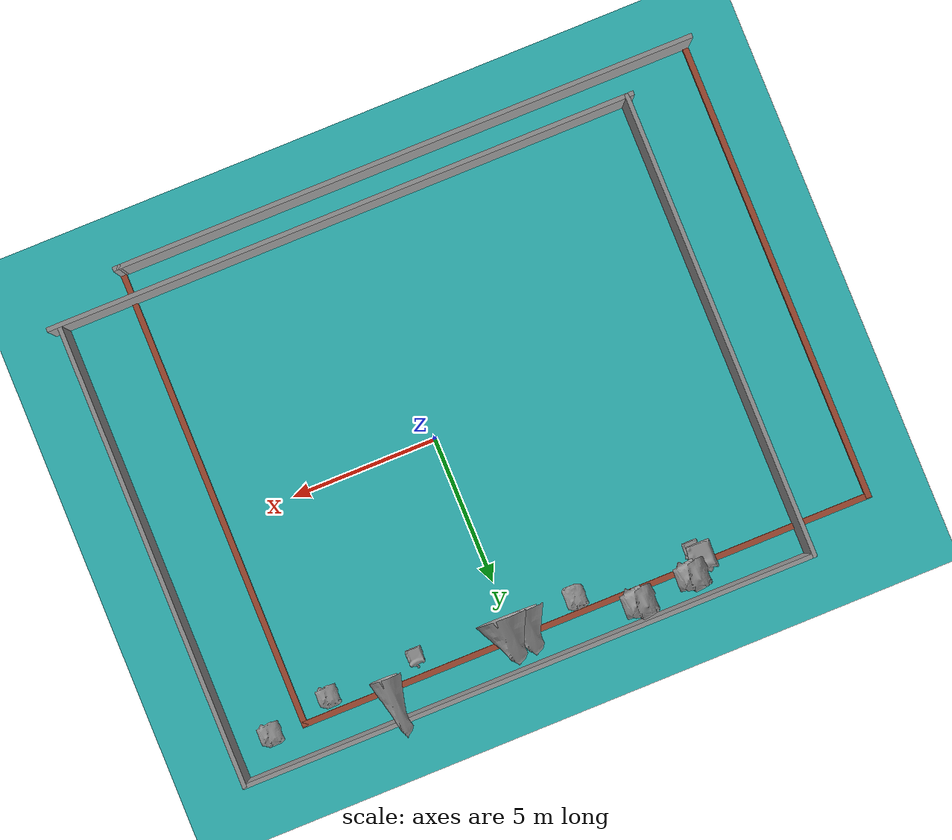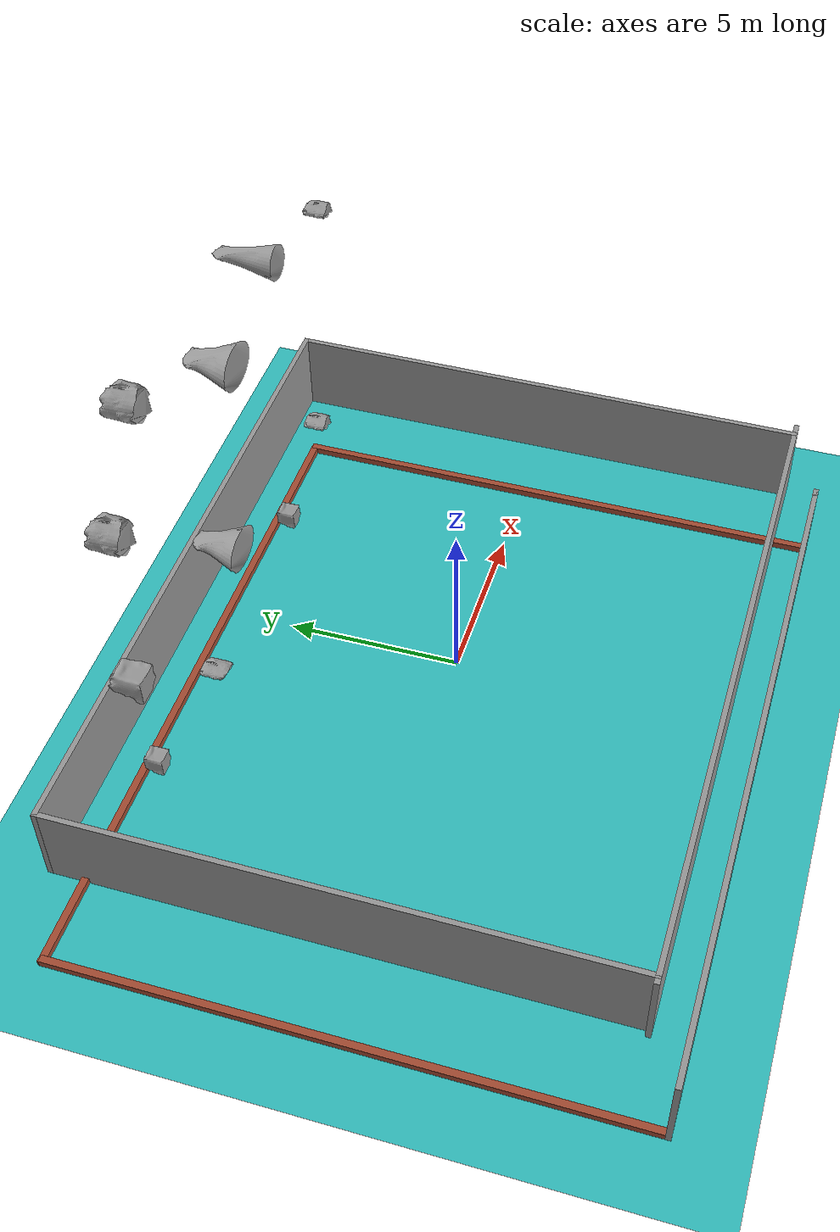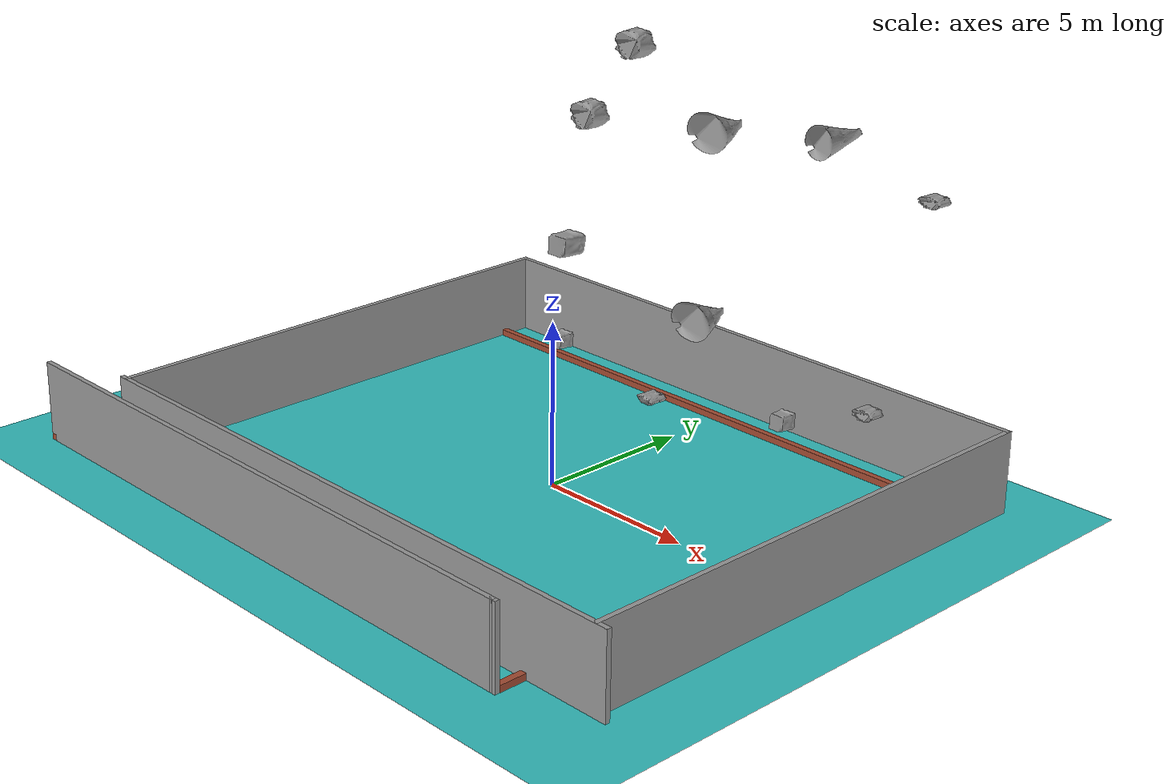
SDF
<sdf version="1.6">
 <world name="rectangle">
  <scene><ambient>0.4 0.4 0.4 1</ambient><background>0.7 0.7 0.7 1</background><shadows>1</shadows></scene>
  <light name="sun" type="directional">
   <pose>0 0 10 0 -0 0</pose>
   <diffuse>0.8 0.8 0.8 1</diffuse>
   <specular>0.1 0.1 0.1 1</specular>
   <attenuation>
    <range>1000</range>
    <constant>0.9</constant>
    <linear>0.01</linear>
    <quadratic>0.001</quadratic>
   </attenuation>
   <direction>-0.5 0.5 -1</direction>
  </light>
  <model name="ground_plane">
   <static>1</static>
   <link name="link">
    <collision name="collision">
     <geometry><plane><normal>0 0 1</normal><size>19.8 16</size></plane></geometry>
     <surface><friction><ode><mu>100</mu><mu2>50</mu2></ode></friction></surface>
    </collision>
    <visual name="visual">
     <cast_shadows>0</cast_shadows>
     <geometry><plane><normal>0 0 1</normal><size>19.8 16</size></plane></geometry>
     <material>
      <script><uri>$(find multi_world)/materials/scripts/gazebo.material</uri><name>Gazebo/Turquoise</name></script>
     </material>
    </visual>
   </link>
  </model>
  <physics name="default_physics" default="0" type="ode">
   <real_time_update_rate>1000</real_time_update_rate>
   <max_step_size>0.001</max_step_size>
   <real_time_factor>1</real_time_factor>
   <ode>
    <solver>
     <type>quick</type>
     <iters>150</iters>
     <precon_iters>0</precon_iters>
     <sor>1.4</sor>
     <use_dynamic_moi_rescaling>1</use_dynamic_moi_rescaling>
    </solver>
    <constraints>
     <cfm>1e-05</cfm>
     <erp>0.2</erp>
     <contact_max_correcting_vel>2000</contact_max_correcting_vel>
     <contact_surface_layer>0.01</contact_surface_layer>
    </constraints>
   </ode>
  </physics>
  <gravity>0 0 -9.8</gravity>
  <magnetic_field>6e-06 2.3e-05 -4.2e-05</magnetic_field>
  <atmosphere type="adiabatic"/>
  <spherical_coordinates>
   <surface_model>EARTH_WGS84</surface_model>
   <latitude_deg>0</latitude_deg>
   <longitude_deg>0</longitude_deg>
   <elevation>0</elevation>
   <heading_deg>0</heading_deg>
  </spherical_coordinates>
  <model name="rectangle">
   <pose>-2.491 -0.932 0 0 -0 0</pose>
   <link name="Wall_0">
    <collision name="Wall_0_Collision">
     <geometry><box><size>20 0.15 2.5</size></box></geometry>
     <pose>0 0 1.25 0 -0 0</pose>
    </collision>
    <visual name="Wall_0_Visual">
     <pose>0 0 1.25 0 -0 0</pose>
     <geometry><box><size>20 0.15 2.5</size></box></geometry>
     <material>
      <script><uri>file://media/materials/scripts/gazebo.material</uri><name>Gazebo/Grey</name></script>
      <ambient>1 1 1 1</ambient>
     </material>
     <meta><layer>0</layer></meta>
    </visual>
    <pose>0 -7.925 0 0 -0 3.14159</pose>
   </link>
   <link name="Wall_1">
    <collision name="Wall_1_Collision">
     <geometry><box><size>16 0.2 0.2</size></box></geometry>
     <pose>0 0 0.1 0 -0 0</pose>
    </collision>
    <visual name="Wall_1_Visual">
     <pose>0 0 0.1 0 -0 0</pose>
     <geometry><box><size>16 0.2 0.2</size></box></geometry>
     <material>
      <script><uri>file://media/materials/scripts/gazebo.material</uri><name>Gazebo/Bricks</name></script>
      <ambient>0.760784 0.662745 0.627451 1</ambient>
     </material>
     <meta><layer>0</layer></meta>
    </visual>
    <pose>-9.9 0 0 0 -0 1.5708</pose>
   </link>
   <link name="Wall_2">
    <collision name="Wall_2_Collision">
     <geometry><box><size>20 0.2 0.2</size></box></geometry>
     <pose>0 0 0.1 0 -0 0</pose>
    </collision>
    <visual name="Wall_2_Visual">
     <pose>0 0 0.1 0 -0 0</pose>
     <geometry><box><size>20 0.2 0.2</size></box></geometry>
     <material>
      <script><uri>file://media/materials/scripts/gazebo.material</uri><name>Gazebo/Bricks</name></script>
      <ambient>0.760784 0.662745 0.627451 1</ambient>
     </material>
     <meta><layer>0</layer></meta>
    </visual>
    <pose>0 7.925 0 0 -0 0</pose>
   </link>
   <link name="Wall_3">
    <collision name="Wall_3_Collision">
     <geometry><box><size>16 0.2 0.2</size></box></geometry>
     <pose>0 0 0.1 0 -0 0</pose>
    </collision>
    <visual name="Wall_3_Visual">
     <pose>0 0 0.1 0 -0 0</pose>
     <geometry><box><size>16 0.2 0.2</size></box></geometry>
     <material>
      <script><uri>file://media/materials/scripts/gazebo.material</uri><name>Gazebo/Bricks</name></script>
      <ambient>0.760784 0.662745 0.627451 1</ambient>
     </material>
     <meta><layer>0</layer></meta>
    </visual>
    <pose>9.9 0 0 0 0 -1.5708</pose>
   </link>
   <link name="Wall_4">
    <collision name="Wall_4_Collision">
     <geometry><box><size>0.16 0.15 2.5</size></box></geometry>
     <pose>0 0 1.25 0 -0 0</pose>
    </collision>
    <visual name="Wall_4_Visual">
     <pose>0 0 1.25 0 -0 0</pose>
     <geometry><box><size>0.16 0.15 2.5</size></box></geometry>
     <material>
      <script><uri>file://media/materials/scripts/gazebo.material</uri><name>Gazebo/Grey</name></script>
      <ambient>1 1 1 1</ambient>
     </material>
     <meta><layer>0</layer></meta>
    </visual>
    <pose>9.80486 -7.92504 0 0 0 -0.008574</pose>
   </link>
   <static>1</static>
  </model>
  <model name="rectangle_v4">
   <link name="link_0">
    <pose>-2.4371 4.8725 -0.041325 0 -0 0</pose>
    <inertial>
     <mass>1</mass>
     <inertia>
      <ixx>0.166667</ixx>
      <ixy>0</ixy>
      <ixz>0</ixz>
      <iyy>0.166667</iyy>
      <iyz>0</iyz>
      <izz>0.166667</izz>
     </inertia>
    </inertial>
    <visual name="visual">
     <geometry>
      <mesh>
       <uri>/home/ubuntu16/catkin_ws/src/project_autoracs/multi_world/materials/meshes/rock_1m.dae</uri>
       <scale>1 1 1</scale>
      </mesh>
     </geometry>
     <material>
      <lighting>1</lighting>
      <script><uri>file://media/materials/scripts/gazebo.material</uri><name>Gazebo/Grey</name></script>
      <shader type="pixel"><normal_map>__default__</normal_map></shader>
      <ambient>0.3 0.3 0.3 1</ambient>
      <diffuse>0.7 0.7 0.7 1</diffuse>
      <specular>0.01 0.01 0.01 1</specular>
      <emissive>0 0 0 1</emissive>
     </material>
    </visual>
    <collision name="collision">
     <geometry>
      <mesh>
       <uri>/home/ubuntu16/catkin_ws/src/project_autoracs/multi_world/materials/meshes/rock_1m.dae</uri>
       <scale>1 1 1</scale>
      </mesh>
     </geometry>
     <surface>
      <friction>
       <ode><mu>1</mu><mu2>1</mu2><fdir1>0 0 0</fdir1><slip1>0</slip1><slip2>0</slip2></ode>
       <torsional>
        <coefficient>1</coefficient>
        <patch_radius>0</patch_radius>
        <surface_radius>0</surface_radius>
        <use_patch_radius>1</use_patch_radius>
        <ode><slip>0</slip></ode>
       </torsional>
      </friction>
      <bounce><restitution_coefficient>0</restitution_coefficient><threshold>1e+06</threshold></bounce>
      <contact>
       <collide_without_contact>0</collide_without_contact>
       <collide_without_contact_bitmask>1</collide_without_contact_bitmask>
       <collide_bitmask>1</collide_bitmask>
       <ode>
        <soft_cfm>0</soft_cfm>
        <soft_erp>0.2</soft_erp>
        <kp>1e+13</kp>
        <kd>1</kd>
        <max_vel>0.01</max_vel>
        <min_depth>0</min_depth>
       </ode>
       <bullet>
        <split_impulse>1</split_impulse>
        <split_impulse_penetration_threshold>-0.01</split_impulse_penetration_threshold>
        <soft_cfm>0</soft_cfm>
        <soft_erp>0.2</soft_erp>
        <kp>1e+13</kp>
        <kd>1</kd>
       </bullet>
      </contact>
     </surface>
    </collision>
   </link>
   <link name="link_1">
    <pose>-5.9239 -3.55224 0.013716 0 -0 0</pose>
    <inertial>
     <mass>1</mass>
     <inertia>
      <ixx>0.166667</ixx>
      <ixy>0</ixy>
      <ixz>0</ixz>
      <iyy>0.166667</iyy>
      <iyz>0</iyz>
      <izz>0.166667</izz>
     </inertia>
    </inertial>
    <visual name="visual">
     <geometry>
      <mesh>
       <uri>/home/ubuntu16/catkin_ws/src/project_autoracs/multi_world/materials/meshes/rock_2.dae</uri>
       <scale>1 1 1</scale>
      </mesh>
     </geometry>
     <material>
      <lighting>1</lighting>
      <script><uri>file://media/materials/scripts/gazebo.material</uri><name>Gazebo/Grey</name></script>
      <shader type="pixel"/>
      <ambient>0.3 0.3 0.3 1</ambient>
      <diffuse>0.7 0.7 0.7 1</diffuse>
      <specular>0.01 0.01 0.01 1</specular>
      <emissive>0 0 0 1</emissive>
     </material>
    </visual>
    <collision name="collision">
     <geometry>
      <mesh>
       <uri>/home/ubuntu16/catkin_ws/src/project_autoracs/multi_world/materials/meshes/rock_2.dae</uri>
       <scale>1 1 1</scale>
      </mesh>
     </geometry>
     <surface>
      <friction>
       <ode><mu>1</mu><mu2>1</mu2><fdir1>0 0 0</fdir1><slip1>0</slip1><slip2>0</slip2></ode>
       <torsional>
        <coefficient>1</coefficient>
        <patch_radius>0</patch_radius>
        <surface_radius>0</surface_radius>
        <use_patch_radius>1</use_patch_radius>
        <ode><slip>0</slip></ode>
       </torsional>
      </friction>
      <bounce><restitution_coefficient>0</restitution_coefficient><threshold>1e+06</threshold></bounce>
      <contact>
       <collide_without_contact>0</collide_without_contact>
       <collide_without_contact_bitmask>1</collide_without_contact_bitmask>
       <collide_bitmask>1</collide_bitmask>
       <ode>
        <soft_cfm>0</soft_cfm>
        <soft_erp>0.2</soft_erp>
        <kp>1e+13</kp>
        <kd>1</kd>
        <max_vel>0.01</max_vel>
        <min_depth>0</min_depth>
       </ode>
       <bullet>
        <split_impulse>1</split_impulse>
        <split_impulse_penetration_threshold>-0.01</split_impulse_penetration_threshold>
        <soft_cfm>0</soft_cfm>
        <soft_erp>0.2</soft_erp>
        <kp>1e+13</kp>
        <kd>1</kd>
       </bullet>
      </contact>
     </surface>
    </collision>
   </link>
   <link name="link_1_clone">
    <pose>-4.10383 -6.14831 0.013716 0 -0 0</pose>
    <inertial>
     <mass>1</mass>
     <inertia>
      <ixx>0.166667</ixx>
      <ixy>0</ixy>
      <ixz>0</ixz>
      <iyy>0.166667</iyy>
      <iyz>0</iyz>
      <izz>0.166667</izz>
     </inertia>
    </inertial>
    <visual name="visual">
     <geometry>
      <mesh>
       <uri>/home/ubuntu16/catkin_ws/src/project_autoracs/multi_world/materials/meshes/rock_2.dae</uri>
       <scale>1 1 1</scale>
      </mesh>
     </geometry>
     <material>
      <lighting>1</lighting>
      <script><uri>file://media/materials/scripts/gazebo.material</uri><name>Gazebo/Grey</name></script>
      <shader type="pixel"/>
      <ambient>0.3 0.3 0.3 1</ambient>
      <diffuse>0.7 0.7 0.7 1</diffuse>
      <specular>0.01 0.01 0.01 1</specular>
      <emissive>0 0 0 1</emissive>
     </material>
    </visual>
    <collision name="collision">
     <geometry>
      <mesh>
       <uri>/home/ubuntu16/catkin_ws/src/project_autoracs/multi_world/materials/meshes/rock_2.dae</uri>
       <scale>1 1 1</scale>
      </mesh>
     </geometry>
     <surface>
      <friction>
       <ode><mu>1</mu><mu2>1</mu2><fdir1>0 0 0</fdir1><slip1>0</slip1><slip2>0</slip2></ode>
       <torsional>
        <coefficient>1</coefficient>
        <patch_radius>0</patch_radius>
        <surface_radius>0</surface_radius>
        <use_patch_radius>1</use_patch_radius>
        <ode><slip>0</slip></ode>
       </torsional>
      </friction>
      <bounce><restitution_coefficient>0</restitution_coefficient><threshold>1e+06</threshold></bounce>
      <contact>
       <collide_without_contact>0</collide_without_contact>
       <collide_without_contact_bitmask>1</collide_without_contact_bitmask>
       <collide_bitmask>1</collide_bitmask>
       <ode>
        <soft_cfm>0</soft_cfm>
        <soft_erp>0.2</soft_erp>
        <kp>1e+13</kp>
        <kd>1</kd>
        <max_vel>0.01</max_vel>
        <min_depth>0</min_depth>
       </ode>
       <bullet>
        <split_impulse>1</split_impulse>
        <split_impulse_penetration_threshold>-0.01</split_impulse_penetration_threshold>
        <soft_cfm>0</soft_cfm>
        <soft_erp>0.2</soft_erp>
        <kp>1e+13</kp>
        <kd>1</kd>
       </bullet>
      </contact>
     </surface>
    </collision>
   </link>
   <link name="link_2">
    <pose>6.05549 2.45471 -0.114713 0 -0 0</pose>
    <inertial>
     <mass>1</mass>
     <inertia>
      <ixx>0.166667</ixx>
      <ixy>0</ixy>
      <ixz>0</ixz>
      <iyy>0.166667</iyy>
      <iyz>0</iyz>
      <izz>0.166667</izz>
     </inertia>
    </inertial>
    <visual name="visual">
     <geometry>
      <mesh>
       <uri>/home/ubuntu16/catkin_ws/src/project_autoracs/multi_world/materials/meshes/rock_07.dae</uri>
       <scale>1 1 1</scale>
      </mesh>
     </geometry>
     <material>
      <lighting>1</lighting>
      <script><uri>file://media/materials/scripts/gazebo.material</uri><name>Gazebo/Grey</name></script>
      <shader type="pixel"><normal_map>__default__</normal_map></shader>
      <ambient>0.3 0.3 0.3 1</ambient>
      <diffuse>0.7 0.7 0.7 1</diffuse>
      <specular>0.01 0.01 0.01 1</specular>
      <emissive>0 0 0 1</emissive>
     </material>
    </visual>
    <collision name="collision">
     <geometry>
      <mesh>
       <uri>/home/ubuntu16/catkin_ws/src/project_autoracs/multi_world/materials/meshes/rock_07.dae</uri>
       <scale>1 1 1</scale>
      </mesh>
     </geometry>
     <surface>
      <friction>
       <ode><mu>1</mu><mu2>1</mu2><fdir1>0 0 0</fdir1><slip1>0</slip1><slip2>0</slip2></ode>
       <torsional>
        <coefficient>1</coefficient>
        <patch_radius>0</patch_radius>
        <surface_radius>0</surface_radius>
        <use_patch_radius>1</use_patch_radius>
        <ode><slip>0</slip></ode>
       </torsional>
      </friction>
      <bounce><restitution_coefficient>0</restitution_coefficient><threshold>1e+06</threshold></bounce>
      <contact>
       <collide_without_contact>0</collide_without_contact>
       <collide_without_contact_bitmask>1</collide_without_contact_bitmask>
       <collide_bitmask>1</collide_bitmask>
       <ode>
        <soft_cfm>0</soft_cfm>
        <soft_erp>0.2</soft_erp>
        <kp>1e+13</kp>
        <kd>1</kd>
        <max_vel>0.01</max_vel>
        <min_depth>0</min_depth>
       </ode>
       <bullet>
        <split_impulse>1</split_impulse>
        <split_impulse_penetration_threshold>-0.01</split_impulse_penetration_threshold>
        <soft_cfm>0</soft_cfm>
        <soft_erp>0.2</soft_erp>
        <kp>1e+13</kp>
        <kd>1</kd>
       </bullet>
      </contact>
     </surface>
    </collision>
   </link>
   <link name="link_2_clone">
    <pose>7.54558 -4.19262 -0.114713 0 -0 0</pose>
    <inertial>
     <mass>1</mass>
     <inertia>
      <ixx>0.166667</ixx>
      <ixy>0</ixy>
      <ixz>0</ixz>
      <iyy>0.166667</iyy>
      <iyz>0</iyz>
      <izz>0.166667</izz>
     </inertia>
    </inertial>
    <visual name="visual">
     <geometry>
      <mesh>
       <uri>/home/ubuntu16/catkin_ws/src/project_autoracs/multi_world/materials/meshes/rock_07.dae</uri>
       <scale>1 1 1</scale>
      </mesh>
     </geometry>
     <material>
      <lighting>1</lighting>
      <script><uri>file://media/materials/scripts/gazebo.material</uri><name>Gazebo/Grey</name></script>
      <shader type="pixel"><normal_map>__default__</normal_map></shader>
      <ambient>0.3 0.3 0.3 1</ambient>
      <diffuse>0.7 0.7 0.7 1</diffuse>
      <specular>0.01 0.01 0.01 1</specular>
      <emissive>0 0 0 1</emissive>
     </material>
    </visual>
    <collision name="collision">
     <geometry>
      <mesh>
       <uri>/home/ubuntu16/catkin_ws/src/project_autoracs/multi_world/materials/meshes/rock_07.dae</uri>
       <scale>1 1 1</scale>
      </mesh>
     </geometry>
     <surface>
      <friction>
       <ode><mu>1</mu><mu2>1</mu2><fdir1>0 0 0</fdir1><slip1>0</slip1><slip2>0</slip2></ode>
       <torsional>
        <coefficient>1</coefficient>
        <patch_radius>0</patch_radius>
        <surface_radius>0</surface_radius>
        <use_patch_radius>1</use_patch_radius>
        <ode><slip>0</slip></ode>
       </torsional>
      </friction>
      <bounce><restitution_coefficient>0</restitution_coefficient><threshold>1e+06</threshold></bounce>
      <contact>
       <collide_without_contact>0</collide_without_contact>
       <collide_without_contact_bitmask>1</collide_without_contact_bitmask>
       <collide_bitmask>1</collide_bitmask>
       <ode>
        <soft_cfm>0</soft_cfm>
        <soft_erp>0.2</soft_erp>
        <kp>1e+13</kp>
        <kd>1</kd>
        <max_vel>0.01</max_vel>
        <min_depth>0</min_depth>
       </ode>
       <bullet>
        <split_impulse>1</split_impulse>
        <split_impulse_penetration_threshold>-0.01</split_impulse_penetration_threshold>
        <soft_cfm>0</soft_cfm>
        <soft_erp>0.2</soft_erp>
        <kp>1e+13</kp>
        <kd>1</kd>
       </bullet>
      </contact>
     </surface>
    </collision>
   </link>
   <link name="link_3">
    <pose>3.70648 -4.93672 0.545789 0 -0 0</pose>
    <inertial>
     <mass>1</mass>
     <inertia>
      <ixx>0.166667</ixx>
      <ixy>0</ixy>
      <ixz>0</ixz>
      <iyy>0.166667</iyy>
      <iyz>0</iyz>
      <izz>0.166667</izz>
     </inertia>
    </inertial>
    <visual name="visual">
     <geometry>
      <mesh>
       <uri>/home/ubuntu16/catkin_ws/src/project_autoracs/multi_world/materials/meshes/rock_cone.dae</uri>
       <scale>1 1 1</scale>
      </mesh>
     </geometry>
     <material>
      <lighting>1</lighting>
      <script><uri>file://media/materials/scripts/gazebo.material</uri><name>Gazebo/Grey</name></script>
      <shader type="pixel"/>
      <ambient>0.3 0.3 0.3 1</ambient>
      <diffuse>0.7 0.7 0.7 1</diffuse>
      <specular>0.01 0.01 0.01 1</specular>
      <emissive>0 0 0 1</emissive>
     </material>
    </visual>
    <collision name="collision">
     <geometry>
      <mesh>
       <uri>/home/ubuntu16/catkin_ws/src/project_autoracs/multi_world/materials/meshes/rock_cone.dae</uri>
       <scale>1 1 1</scale>
      </mesh>
     </geometry>
     <surface>
      <friction>
       <ode><mu>1</mu><mu2>1</mu2><fdir1>0 0 0</fdir1><slip1>0</slip1><slip2>0</slip2></ode>
       <torsional>
        <coefficient>1</coefficient>
        <patch_radius>0</patch_radius>
        <surface_radius>0</surface_radius>
        <use_patch_radius>1</use_patch_radius>
        <ode><slip>0</slip></ode>
       </torsional>
      </friction>
      <bounce><restitution_coefficient>0</restitution_coefficient><threshold>1e+06</threshold></bounce>
      <contact>
       <collide_without_contact>0</collide_without_contact>
       <collide_without_contact_bitmask>1</collide_without_contact_bitmask>
       <collide_bitmask>1</collide_bitmask>
       <ode>
        <soft_cfm>0</soft_cfm>
        <soft_erp>0.2</soft_erp>
        <kp>1e+13</kp>
        <kd>1</kd>
        <max_vel>0.01</max_vel>
        <min_depth>0</min_depth>
       </ode>
       <bullet>
        <split_impulse>1</split_impulse>
        <split_impulse_penetration_threshold>-0.01</split_impulse_penetration_threshold>
        <soft_cfm>0</soft_cfm>
        <soft_erp>0.2</soft_erp>
        <kp>1e+13</kp>
        <kd>1</kd>
       </bullet>
      </contact>
     </surface>
    </collision>
   </link>
   <link name="link_4">
    <pose>-0.13266 -4.38992 -0.052829 0 -0 0</pose>
    <inertial>
     <mass>1</mass>
     <inertia>
      <ixx>0.166667</ixx>
      <ixy>0</ixy>
      <ixz>0</ixz>
      <iyy>0.166667</iyy>
      <iyz>0</iyz>
      <izz>0.166667</izz>
     </inertia>
    </inertial>
    <visual name="visual">
     <geometry>
      <mesh>
       <uri>/home/ubuntu16/catkin_ws/src/project_autoracs/multi_world/materials/meshes/rock_cone2.dae</uri>
       <scale>1 1 1</scale>
      </mesh>
     </geometry>
     <material>
      <lighting>1</lighting>
      <script><uri>file://media/materials/scripts/gazebo.material</uri><name>Gazebo/Grey</name></script>
      <shader type="pixel"/>
      <ambient>0.3 0.3 0.3 1</ambient>
      <diffuse>0.7 0.7 0.7 1</diffuse>
      <specular>0.01 0.01 0.01 1</specular>
      <emissive>0 0 0 1</emissive>
     </material>
    </visual>
    <collision name="collision">
     <geometry>
      <mesh>
       <uri>/home/ubuntu16/catkin_ws/src/project_autoracs/multi_world/materials/meshes/rock_cone2.dae</uri>
       <scale>1 1 1</scale>
      </mesh>
     </geometry>
     <surface>
      <friction>
       <ode><mu>1</mu><mu2>1</mu2><fdir1>0 0 0</fdir1><slip1>0</slip1><slip2>0</slip2></ode>
       <torsional>
        <coefficient>1</coefficient>
        <patch_radius>0</patch_radius>
        <surface_radius>0</surface_radius>
        <use_patch_radius>1</use_patch_radius>
        <ode><slip>0</slip></ode>
       </torsional>
      </friction>
      <bounce><restitution_coefficient>0</restitution_coefficient><threshold>1e+06</threshold></bounce>
      <contact>
       <collide_without_contact>0</collide_without_contact>
       <collide_without_contact_bitmask>1</collide_without_contact_bitmask>
       <collide_bitmask>1</collide_bitmask>
       <ode>
        <soft_cfm>0</soft_cfm>
        <soft_erp>0.2</soft_erp>
        <kp>1e+13</kp>
        <kd>1</kd>
        <max_vel>0.01</max_vel>
        <min_depth>0</min_depth>
       </ode>
       <bullet>
        <split_impulse>1</split_impulse>
        <split_impulse_penetration_threshold>-0.01</split_impulse_penetration_threshold>
        <soft_cfm>0</soft_cfm>
        <soft_erp>0.2</soft_erp>
        <kp>1e+13</kp>
        <kd>1</kd>
       </bullet>
      </contact>
     </surface>
    </collision>
   </link>
   <link name="link_4_clone">
    <pose>-0.626195 1.68484 0.325616 0 -0 0</pose>
    <inertial>
     <mass>1</mass>
     <inertia>
      <ixx>0.166667</ixx>
      <ixy>0</ixy>
      <ixz>0</ixz>
      <iyy>0.166667</iyy>
      <iyz>0</iyz>
      <izz>0.166667</izz>
     </inertia>
    </inertial>
    <visual name="visual">
     <geometry>
      <mesh>
       <uri>/home/ubuntu16/catkin_ws/src/project_autoracs/multi_world/materials/meshes/rock_cone2.dae</uri>
       <scale>1 1 1</scale>
      </mesh>
     </geometry>
     <material>
      <lighting>1</lighting>
      <script><uri>file://media/materials/scripts/gazebo.material</uri><name>Gazebo/Grey</name></script>
      <shader type="pixel"/>
      <ambient>0.3 0.3 0.3 1</ambient>
      <diffuse>0.7 0.7 0.7 1</diffuse>
      <specular>0.01 0.01 0.01 1</specular>
      <emissive>0 0 0 1</emissive>
     </material>
    </visual>
    <collision name="collision">
     <geometry>
      <mesh>
       <uri>/home/ubuntu16/catkin_ws/src/project_autoracs/multi_world/materials/meshes/rock_cone2.dae</uri>
       <scale>1 1 1</scale>
      </mesh>
     </geometry>
     <surface>
      <friction>
       <ode><mu>1</mu><mu2>1</mu2><fdir1>0 0 0</fdir1><slip1>0</slip1><slip2>0</slip2></ode>
       <torsional>
        <coefficient>1</coefficient>
        <patch_radius>0</patch_radius>
        <surface_radius>0</surface_radius>
        <use_patch_radius>1</use_patch_radius>
        <ode><slip>0</slip></ode>
       </torsional>
      </friction>
      <bounce><restitution_coefficient>0</restitution_coefficient><threshold>1e+06</threshold></bounce>
      <contact>
       <collide_without_contact>0</collide_without_contact>
       <collide_without_contact_bitmask>1</collide_without_contact_bitmask>
       <collide_bitmask>1</collide_bitmask>
       <ode>
        <soft_cfm>0</soft_cfm>
        <soft_erp>0.2</soft_erp>
        <kp>1e+13</kp>
        <kd>1</kd>
        <max_vel>0.01</max_vel>
        <min_depth>0</min_depth>
       </ode>
       <bullet>
        <split_impulse>1</split_impulse>
        <split_impulse_penetration_threshold>-0.01</split_impulse_penetration_threshold>
        <soft_cfm>0</soft_cfm>
        <soft_erp>0.2</soft_erp>
        <kp>1e+13</kp>
        <kd>1</kd>
       </bullet>
      </contact>
     </surface>
    </collision>
   </link>
   <link name="link_5">
    <pose>3.05201 3.73206 -0.206446 0 -0 0</pose>
    <inertial>
     <mass>1</mass>
     <inertia>
      <ixx>0.166667</ixx>
      <ixy>0</ixy>
      <ixz>0</ixz>
      <iyy>0.166667</iyy>
      <iyz>0</iyz>
      <izz>0.166667</izz>
     </inertia>
    </inertial>
    <visual name="visual">
     <geometry>
      <mesh>
       <uri>/home/ubuntu16/catkin_ws/src/project_autoracs/multi_world/materials/meshes/rock_square.dae</uri>
       <scale>1 1 1</scale>
      </mesh>
     </geometry>
     <material>
      <lighting>1</lighting>
      <script><uri>file://media/materials/scripts/gazebo.material</uri><name>Gazebo/Grey</name></script>
      <shader type="pixel"/>
      <ambient>0.3 0.3 0.3 1</ambient>
      <diffuse>0.7 0.7 0.7 1</diffuse>
      <specular>0.01 0.01 0.01 1</specular>
      <emissive>0 0 0 1</emissive>
     </material>
    </visual>
    <collision name="collision">
     <geometry>
      <mesh>
       <uri>/home/ubuntu16/catkin_ws/src/project_autoracs/multi_world/materials/meshes/rock_square.dae</uri>
       <scale>1 1 1</scale>
      </mesh>
     </geometry>
     <surface>
      <friction>
       <ode><mu>1</mu><mu2>1</mu2><fdir1>0 0 0</fdir1><slip1>0</slip1><slip2>0</slip2></ode>
       <torsional>
        <coefficient>1</coefficient>
        <patch_radius>0</patch_radius>
        <surface_radius>0</surface_radius>
        <use_patch_radius>1</use_patch_radius>
        <ode><slip>0</slip></ode>
       </torsional>
      </friction>
      <bounce><restitution_coefficient>0</restitution_coefficient><threshold>1e+06</threshold></bounce>
      <contact>
       <collide_without_contact>0</collide_without_contact>
       <collide_without_contact_bitmask>1</collide_without_contact_bitmask>
       <collide_bitmask>1</collide_bitmask>
       <ode>
        <soft_cfm>0</soft_cfm>
        <soft_erp>0.2</soft_erp>
        <kp>1e+13</kp>
        <kd>1</kd>
        <max_vel>0.01</max_vel>
        <min_depth>0</min_depth>
       </ode>
       <bullet>
        <split_impulse>1</split_impulse>
        <split_impulse_penetration_threshold>-0.01</split_impulse_penetration_threshold>
        <soft_cfm>0</soft_cfm>
        <soft_erp>0.2</soft_erp>
        <kp>1e+13</kp>
        <kd>1</kd>
       </bullet>
      </contact>
     </surface>
    </collision>
   </link>
   <link name="link_5_clone">
    <pose>-6.51117 4.17622 -0.206445 0 -0 0</pose>
    <inertial>
     <mass>1</mass>
     <inertia>
      <ixx>0.166667</ixx>
      <ixy>0</ixy>
      <ixz>0</ixz>
      <iyy>0.166667</iyy>
      <iyz>0</iyz>
      <izz>0.166667</izz>
     </inertia>
    </inertial>
    <visual name="visual">
     <geometry>
      <mesh>
       <uri>/home/ubuntu16/catkin_ws/src/project_autoracs/multi_world/materials/meshes/rock_square.dae</uri>
       <scale>1 1 1</scale>
      </mesh>
     </geometry>
     <material>
      <lighting>1</lighting>
      <script><uri>file://media/materials/scripts/gazebo.material</uri><name>Gazebo/Grey</name></script>
      <shader type="pixel"/>
      <ambient>0.3 0.3 0.3 1</ambient>
      <diffuse>0.7 0.7 0.7 1</diffuse>
      <specular>0.01 0.01 0.01 1</specular>
      <emissive>0 0 0 1</emissive>
     </material>
    </visual>
    <collision name="collision">
     <geometry>
      <mesh>
       <uri>/home/ubuntu16/catkin_ws/src/project_autoracs/multi_world/materials/meshes/rock_square.dae</uri>
       <scale>1 1 1</scale>
      </mesh>
     </geometry>
     <surface>
      <friction>
       <ode><mu>1</mu><mu2>1</mu2><fdir1>0 0 0</fdir1><slip1>0</slip1><slip2>0</slip2></ode>
       <torsional>
        <coefficient>1</coefficient>
        <patch_radius>0</patch_radius>
        <surface_radius>0</surface_radius>
        <use_patch_radius>1</use_patch_radius>
        <ode><slip>0</slip></ode>
       </torsional>
      </friction>
      <bounce><restitution_coefficient>0</restitution_coefficient><threshold>1e+06</threshold></bounce>
      <contact>
       <collide_without_contact>0</collide_without_contact>
       <collide_without_contact_bitmask>1</collide_without_contact_bitmask>
       <collide_bitmask>1</collide_bitmask>
       <ode>
        <soft_cfm>0</soft_cfm>
        <soft_erp>0.2</soft_erp>
        <kp>1e+13</kp>
        <kd>1</kd>
        <max_vel>0.01</max_vel>
        <min_depth>0</min_depth>
       </ode>
       <bullet>
        <split_impulse>1</split_impulse>
        <split_impulse_penetration_threshold>-0.01</split_impulse_penetration_threshold>
        <soft_cfm>0</soft_cfm>
        <soft_erp>0.2</soft_erp>
        <kp>1e+13</kp>
        <kd>1</kd>
       </bullet>
      </contact>
     </surface>
    </collision>
   </link>
   <link name="link_6">
    <pose>-6.60381 0.928784 -0.114702 0 -0 0</pose>
    <inertial>
     <mass>1</mass>
     <inertia>
      <ixx>0.166667</ixx>
      <ixy>0</ixy>
      <ixz>0</ixz>
      <iyy>0.166667</iyy>
      <iyz>0</iyz>
      <izz>0.166667</izz>
     </inertia>
    </inertial>
    <visual name="visual">
     <geometry>
      <mesh>
       <uri>/home/ubuntu16/catkin_ws/src/project_autoracs/multi_world/materials/meshes/rock_square2.dae</uri>
       <scale>1 1 1</scale>
      </mesh>
     </geometry>
     <material>
      <lighting>1</lighting>
      <script><uri>file://media/materials/scripts/gazebo.material</uri><name>Gazebo/Grey</name></script>
      <shader type="pixel"><normal_map>__default__</normal_map></shader>
      <ambient>0.3 0.3 0.3 1</ambient>
      <diffuse>0.7 0.7 0.7 1</diffuse>
      <specular>0.01 0.01 0.01 1</specular>
      <emissive>0 0 0 1</emissive>
     </material>
    </visual>
    <collision name="collision">
     <geometry>
      <mesh>
       <uri>/home/ubuntu16/catkin_ws/src/project_autoracs/multi_world/materials/meshes/rock_square2.dae</uri>
       <scale>1 1 1</scale>
      </mesh>
     </geometry>
     <surface>
      <friction>
       <ode><mu>1</mu><mu2>1</mu2><fdir1>0 0 0</fdir1><slip1>0</slip1><slip2>0</slip2></ode>
       <torsional>
        <coefficient>1</coefficient>
        <patch_radius>0</patch_radius>
        <surface_radius>0</surface_radius>
        <use_patch_radius>1</use_patch_radius>
        <ode><slip>0</slip></ode>
       </torsional>
      </friction>
      <bounce><restitution_coefficient>0</restitution_coefficient><threshold>1e+06</threshold></bounce>
      <contact>
       <collide_without_contact>0</collide_without_contact>
       <collide_without_contact_bitmask>1</collide_without_contact_bitmask>
       <collide_bitmask>1</collide_bitmask>
       <ode>
        <soft_cfm>0</soft_cfm>
        <soft_erp>0.2</soft_erp>
        <kp>1e+13</kp>
        <kd>1</kd>
        <max_vel>0.01</max_vel>
        <min_depth>0</min_depth>
       </ode>
       <bullet>
        <split_impulse>1</split_impulse>
        <split_impulse_penetration_threshold>-0.01</split_impulse_penetration_threshold>
        <soft_cfm>0</soft_cfm>
        <soft_erp>0.2</soft_erp>
        <kp>1e+13</kp>
        <kd>1</kd>
       </bullet>
      </contact>
     </surface>
    </collision>
   </link>
   <link name="link_6_clone">
    <pose>5.97909 5.37069 -0.047666 0 -0 0</pose>
    <inertial>
     <mass>1</mass>
     <inertia>
      <ixx>0.166667</ixx>
      <ixy>0</ixy>
      <ixz>0</ixz>
      <iyy>0.166667</iyy>
      <iyz>0</iyz>
      <izz>0.166667</izz>
     </inertia>
    </inertial>
    <visual name="visual">
     <geometry>
      <mesh>
       <uri>/home/ubuntu16/catkin_ws/src/project_autoracs/multi_world/materials/meshes/rock_square2.dae</uri>
       <scale>1 1 1</scale>
      </mesh>
     </geometry>
     <material>
      <lighting>1</lighting>
      <script><uri>file://media/materials/scripts/gazebo.material</uri><name>Gazebo/Grey</name></script>
      <shader type="pixel"><normal_map>__default__</normal_map></shader>
      <ambient>0.3 0.3 0.3 1</ambient>
      <diffuse>0.7 0.7 0.7 1</diffuse>
      <specular>0.01 0.01 0.01 1</specular>
      <emissive>0 0 0 1</emissive>
     </material>
    </visual>
    <collision name="collision">
     <geometry>
      <mesh>
       <uri>/home/ubuntu16/catkin_ws/src/project_autoracs/multi_world/materials/meshes/rock_square2.dae</uri>
       <scale>1 1 1</scale>
      </mesh>
     </geometry>
     <surface>
      <friction>
       <ode><mu>1</mu><mu2>1</mu2><fdir1>0 0 0</fdir1><slip1>0</slip1><slip2>0</slip2></ode>
       <torsional>
        <coefficient>1</coefficient>
        <patch_radius>0</patch_radius>
        <surface_radius>0</surface_radius>
        <use_patch_radius>1</use_patch_radius>
        <ode><slip>0</slip></ode>
       </torsional>
      </friction>
      <bounce><restitution_coefficient>0</restitution_coefficient><threshold>1e+06</threshold></bounce>
      <contact>
       <collide_without_contact>0</collide_without_contact>
       <collide_without_contact_bitmask>1</collide_without_contact_bitmask>
       <collide_bitmask>1</collide_bitmask>
       <ode>
        <soft_cfm>0</soft_cfm>
        <soft_erp>0.2</soft_erp>
        <kp>1e+13</kp>
        <kd>1</kd>
        <max_vel>0.01</max_vel>
        <min_depth>0</min_depth>
       </ode>
       <bullet>
        <split_impulse>1</split_impulse>
        <split_impulse_penetration_threshold>-0.01</split_impulse_penetration_threshold>
        <soft_cfm>0</soft_cfm>
        <soft_erp>0.2</soft_erp>
        <kp>1e+13</kp>
        <kd>1</kd>
       </bullet>
      </contact>
     </surface>
    </collision>
   </link>
   <static>0</static>
   <pose>0.243281 6.60881 4.98071 -1.59964 0.020247 -0.018501</pose>
  </model>
  <model name="side_wall">
   <pose>-0.025537 0.09 0 0 -0 0</pose>
   <link name="Wall_0">
    <collision name="Wall_0_Collision">
     <geometry><box><size>19.75 0.15 2.5</size></box></geometry>
     <pose>0 0 1.25 0 -0 0</pose>
    </collision>
    <visual name="Wall_0_Visual">
     <pose>0 0 1.25 0 -0 0</pose>
     <geometry><box><size>19.75 0.15 2.5</size></box></geometry>
     <material>
      <script><uri>file://media/materials/scripts/gazebo.material</uri><name>Gazebo/Grey</name></script>
      <ambient>1 1 1 1</ambient>
     </material>
     <meta><layer>0</layer></meta>
    </visual>
    <pose>0 7.925 0 0 -0 0</pose>
   </link>
   <link name="Wall_2">
    <collision name="Wall_2_Collision">
     <geometry><box><size>16 0.15 2.5</size></box></geometry>
     <pose>0 0 1.25 0 -0 0</pose>
    </collision>
    <visual name="Wall_2_Visual">
     <pose>0 0 1.25 0 -0 0</pose>
     <geometry><box><size>16 0.15 2.5</size></box></geometry>
     <material>
      <script><uri>file://media/materials/scripts/gazebo.material</uri><name>Gazebo/Grey</name></script>
      <ambient>1 1 1 1</ambient>
     </material>
     <meta><layer>0</layer></meta>
    </visual>
    <pose>9.8 0 0 0 0 -1.5708</pose>
   </link>
   <link name="Wall_4">
    <collision name="Wall_4_Collision">
     <geometry><box><size>16 0.15 2.5</size></box></geometry>
     <pose>0 0 1.25 0 -0 0</pose>
    </collision>
    <visual name="Wall_4_Visual">
     <pose>0 0 1.25 0 -0 0</pose>
     <geometry><box><size>16 0.15 2.5</size></box></geometry>
     <material>
      <script><uri>file://media/materials/scripts/gazebo.material</uri><name>Gazebo/Grey</name></script>
      <ambient>1 1 1 1</ambient>
     </material>
     <meta><layer>0</layer></meta>
    </visual>
    <pose>-9.8 0 0 0 0 -1.5708</pose>
   </link>
   <static>1</static>
  </model>
  <model name="one_side_wall">
   <pose>0.063502 -7.84832 0 0 -0 0</pose>
   <link name="Wall_0">
    <collision name="Wall_0_Collision">
     <geometry><box><size>20.25 0.15 2.5</size></box></geometry>
     <pose>0 0 1.25 0 -0 0</pose>
    </collision>
    <visual name="Wall_0_Visual">
     <pose>0 0 1.25 0 -0 0</pose>
     <geometry><box><size>20.25 0.15 2.5</size></box></geometry>
     <material>
      <script><uri>file://media/materials/scripts/gazebo.material</uri><name>Gazebo/Grey</name></script>
      <ambient>1 1 1 1</ambient>
     </material>
     <meta><layer>0</layer></meta>
    </visual>
    <pose>0 0 0 0 -0 3.14159</pose>
   </link>
   <static>1</static>
  </model>
 </world>
</sdf>
